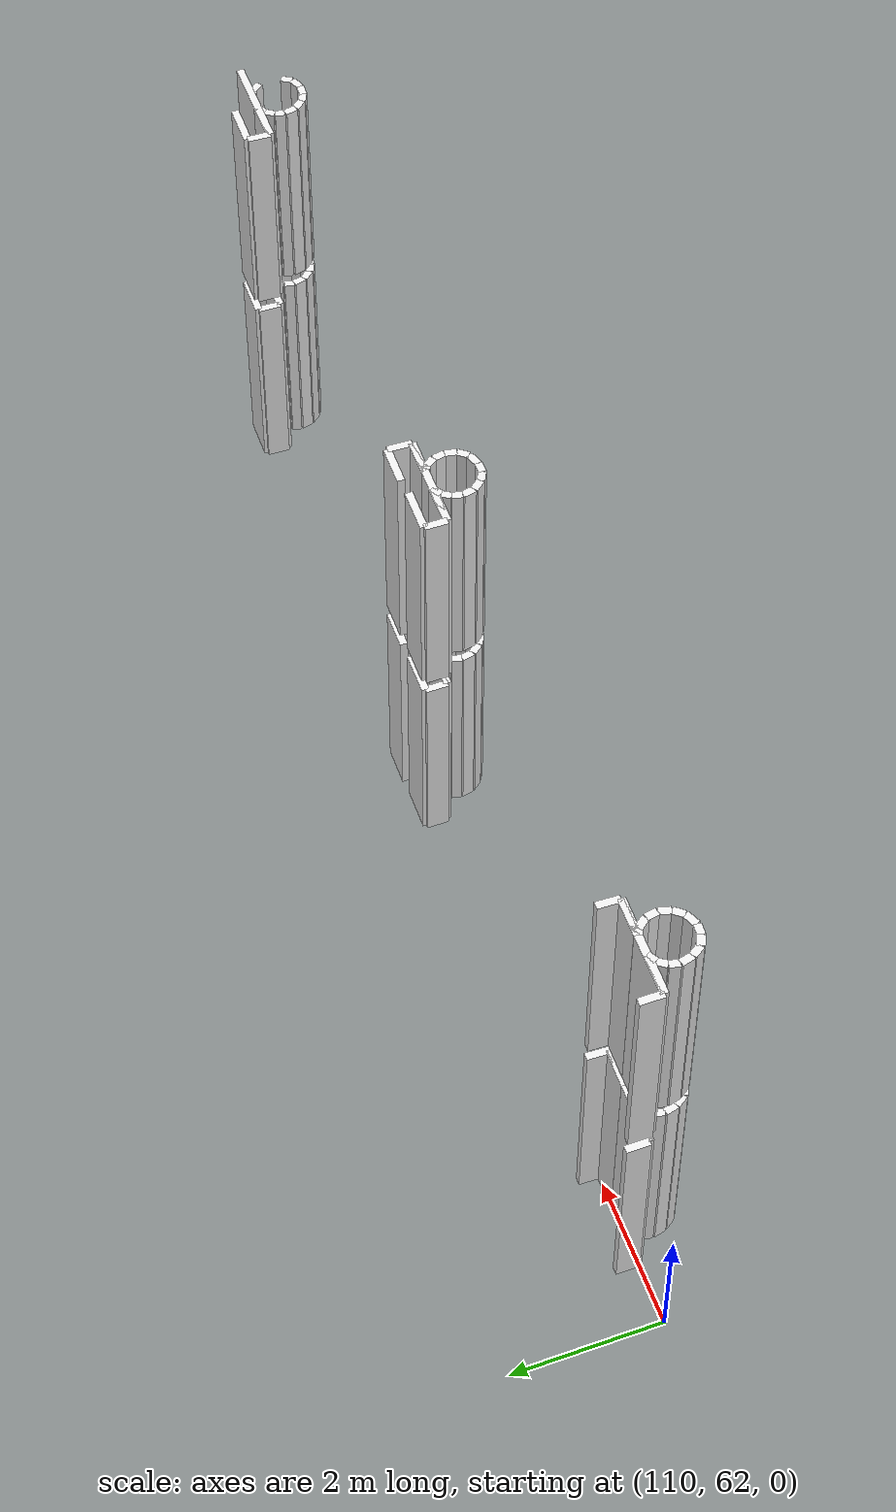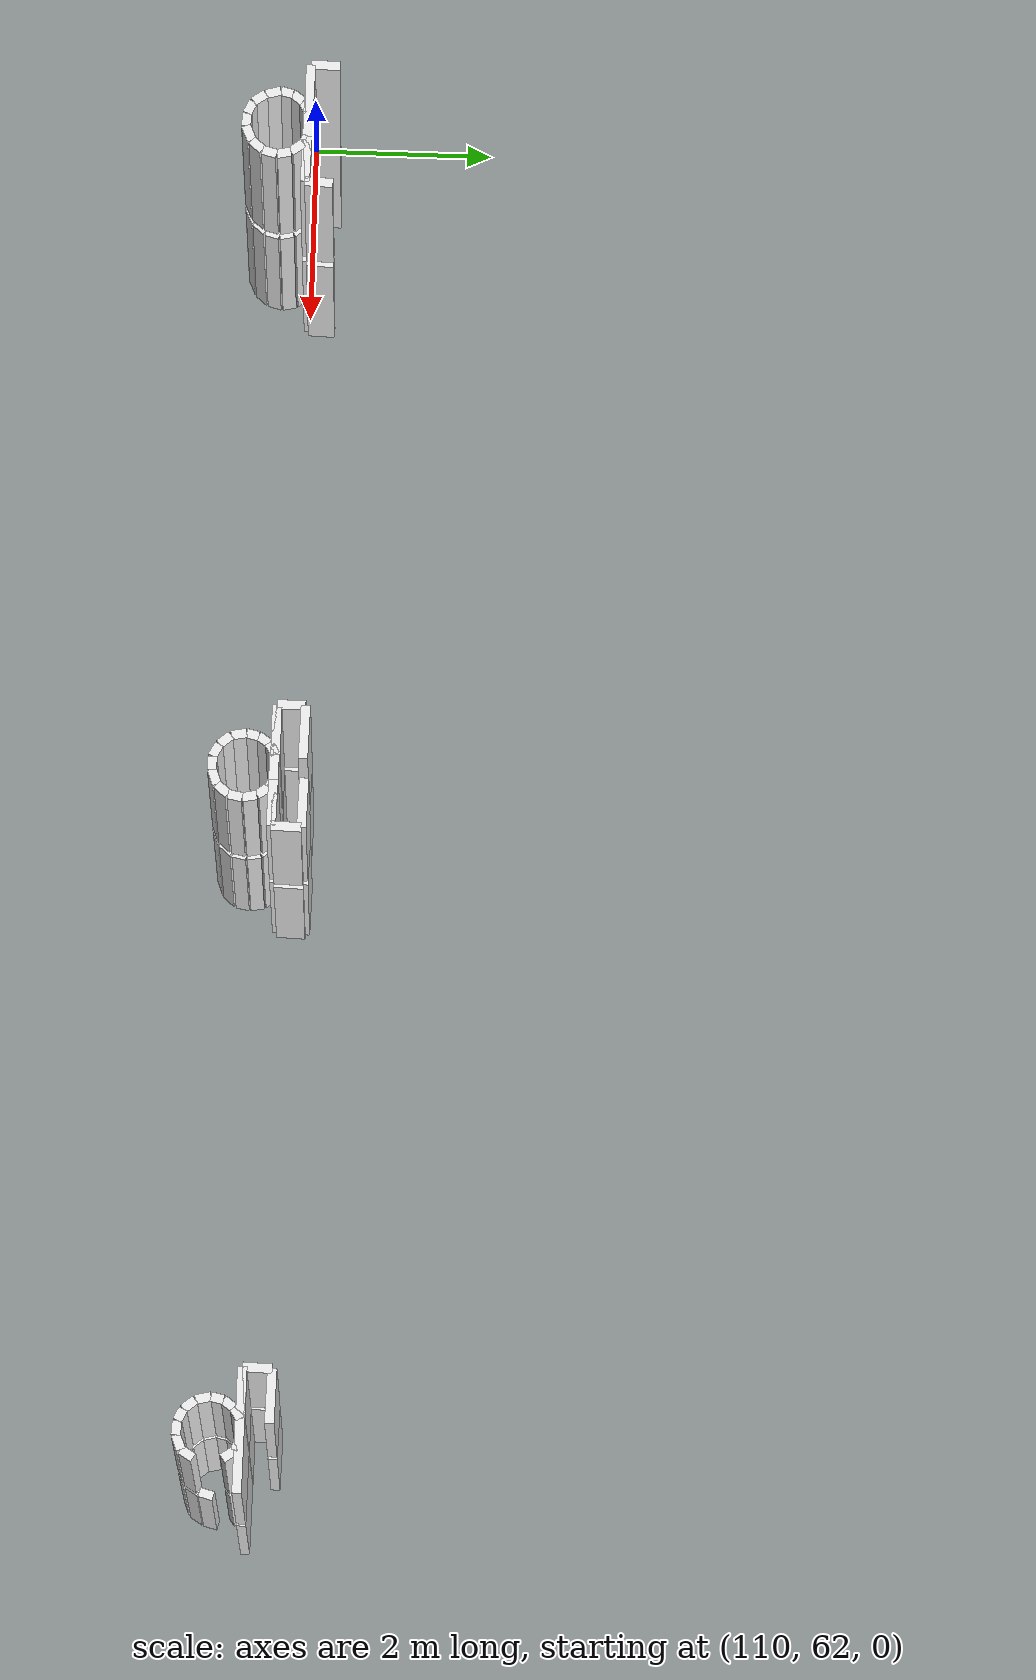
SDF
<sdf version="1.6">
 <world name="default">
  <model name="wall_118.1_62.2_0.0">
   <static>true</static>
   <pose>118.13499999998021 62.19500000006519 1.5 0 0 -0.01754206048187066</pose>
   <link name="link">
    <visual name="visual">
     <geometry><box><size>0.5700877125608004 0.1 3</size></box></geometry>
     <material>
      <script><uri>file://media/materials/scripts/gazebo.material</uri><name>Gazebo/White</name></script>
     </material>
    </visual>
   </link>
  </model>
  <model name="wall_118.9_62.2_0.0">
   <static>true</static>
   <pose>118.89499999998952 62.205000000074506 1.5 0 0 -0.018865685601167047</pose>
   <link name="link">
    <visual name="visual">
     <geometry><box><size>0.5300943311934637 0.1 3</size></box></geometry>
     <material>
      <script><uri>file://media/materials/scripts/gazebo.material</uri><name>Gazebo/White</name></script>
     </material>
    </visual>
   </link>
  </model>
  <model name="wall_125.2_62.1_0.0">
   <static>true</static>
   <pose>125.15499999999884 62.10499999998137 1.5 0 0 -0.017542059665172402</pose>
   <link name="link">
    <visual name="visual">
     <geometry><box><size>0.5700877125526321 0.1 3</size></box></geometry>
     <material>
      <script><uri>file://media/materials/scripts/gazebo.material</uri><name>Gazebo/White</name></script>
     </material>
    </visual>
   </link>
  </model>
  <model name="wall_110.8_62.2_0.0">
   <static>true</static>
   <pose>110.84999999997672 62.15500000002794 1.5 0 0 -1.5707963267948966</pose>
   <link name="link">
    <visual name="visual">
     <geometry><box><size>0.31000000005587935 0.1 3</size></box></geometry>
     <material>
      <script><uri>file://media/materials/scripts/gazebo.material</uri><name>Gazebo/White</name></script>
     </material>
    </visual>
   </link>
  </model>
  <model name="wall_111.1_62.0_0.0">
   <static>true</static>
   <pose>111.10999999998603 61.99500000011176 1.5 0 0 -0.01922839866933633</pose>
   <link name="link">
    <visual name="visual">
     <geometry><box><size>0.5200961449721592 0.1 3</size></box></geometry>
     <material>
      <script><uri>file://media/materials/scripts/gazebo.material</uri><name>Gazebo/White</name></script>
     </material>
    </visual>
   </link>
  </model>
  <model name="wall_111.3_62.0_0.0">
   <static>true</static>
   <pose>111.31500000000233 61.96000000019558 1.5 0 0 -2.642245931464764</pose>
   <link name="link">
    <visual name="visual">
     <geometry><box><size>0.12529964087591056 0.1 3</size></box></geometry>
     <material>
      <script><uri>file://media/materials/scripts/gazebo.material</uri><name>Gazebo/White</name></script>
     </material>
    </visual>
   </link>
  </model>
  <model name="wall_111.2_61.9_0.0">
   <static>true</static>
   <pose>111.22000000000116 61.875 1.5 0 0 -2.199592611857395</pose>
   <link name="link">
    <visual name="visual">
     <geometry><box><size>0.13601470536809043 0.1 3</size></box></geometry>
     <material>
      <script><uri>file://media/materials/scripts/gazebo.material</uri><name>Gazebo/White</name></script>
     </material>
    </visual>
   </link>
  </model>
  <model name="wall_111.2_61.8_0.0">
   <static>true</static>
   <pose>111.16500000000815 61.75499999988824 1.5 0 0 -1.7975951748160817</pose>
   <link name="link">
    <visual name="visual">
     <geometry><box><size>0.13341664052556057 0.1 3</size></box></geometry>
     <material>
      <script><uri>file://media/materials/scripts/gazebo.material</uri><name>Gazebo/White</name></script>
     </material>
    </visual>
   </link>
  </model>
  <model name="wall_111.2_61.6_0.0">
   <static>true</static>
   <pose>111.1700000000128 61.609999999869615 1.5 0 0 -1.3258176640104304</pose>
   <link name="link">
    <visual name="visual">
     <geometry><box><size>0.16492422516418664 0.1 3</size></box></geometry>
     <material>
      <script><uri>file://media/materials/scripts/gazebo.material</uri><name>Gazebo/White</name></script>
     </material>
    </visual>
   </link>
  </model>
  <model name="wall_111.2_61.5_0.0">
   <static>true</static>
   <pose>111.23500000001513 61.46499999985099 1.5 0 0 -0.9652516626544161</pose>
   <link name="link">
    <visual name="visual">
     <geometry><box><size>0.15811388293111006 0.1 3</size></box></geometry>
     <material>
      <script><uri>file://media/materials/scripts/gazebo.material</uri><name>Gazebo/White</name></script>
     </material>
    </visual>
   </link>
  </model>
  <model name="wall_111.3_61.4_0.0">
   <static>true</static>
   <pose>111.34500000000116 61.36999999987893 1.5 0 0 -0.4324077760816295</pose>
   <link name="link">
    <visual name="visual">
     <geometry><box><size>0.14317821060755806 0.1 3</size></box></geometry>
     <material>
      <script><uri>file://media/materials/scripts/gazebo.material</uri><name>Gazebo/White</name></script>
     </material>
    </visual>
   </link>
  </model>
  <model name="wall_111.5_61.3_0.0">
   <static>true</static>
   <pose>111.47999999998137 61.33499999996275 1.5 0 0 -0.07130746318975038</pose>
   <link name="link">
    <visual name="visual">
     <geometry><box><size>0.1403566884741914 0.1 3</size></box></geometry>
     <material>
      <script><uri>file://media/materials/scripts/gazebo.material</uri><name>Gazebo/White</name></script>
     </material>
    </visual>
   </link>
  </model>
  <model name="wall_111.6_61.4_0.0">
   <static>true</static>
   <pose>111.63000000000466 61.36499999999069 1.5 0 0 0.41241044064316335</pose>
   <link name="link">
    <visual name="visual">
     <geometry><box><size>0.17464249192840064 0.1 3</size></box></geometry>
     <material>
      <script><uri>file://media/materials/scripts/gazebo.material</uri><name>Gazebo/White</name></script>
     </material>
    </visual>
   </link>
  </model>
  <model name="wall_111.8_61.5_0.0">
   <static>true</static>
   <pose>111.76000000000931 61.45999999996275 1.5 0 0 0.8760580511707278</pose>
   <link name="link">
    <visual name="visual">
     <geometry><box><size>0.15620499358908305 0.1 3</size></box></geometry>
     <material>
      <script><uri>file://media/materials/scripts/gazebo.material</uri><name>Gazebo/White</name></script>
     </material>
    </visual>
   </link>
  </model>
  <model name="wall_111.8_61.6_0.0">
   <static>true</static>
   <pose>111.8299999999872 61.59499999997206 1.5 0 0 1.310193935023403</pose>
   <link name="link">
    <visual name="visual">
     <geometry><box><size>0.15524174686721334 0.1 3</size></box></geometry>
     <material>
      <script><uri>file://media/materials/scripts/gazebo.material</uri><name>Gazebo/White</name></script>
     </material>
    </visual>
   </link>
  </model>
  <model name="wall_111.8_61.7_0.0">
   <static>true</static>
   <pose>111.83499999999185 61.74499999987893 1.5 0 0 1.7681918865701522</pose>
   <link name="link">
    <visual name="visual">
     <geometry><box><size>0.15297058531052382 0.1 3</size></box></geometry>
     <material>
      <script><uri>file://media/materials/scripts/gazebo.material</uri><name>Gazebo/White</name></script>
     </material>
    </visual>
   </link>
  </model>
  <model name="wall_111.8_61.9_0.0">
   <static>true</static>
   <pose>111.76999999998952 61.88500000000931 1.5 0 0 2.2264919518895905</pose>
   <link name="link">
    <visual name="visual">
     <geometry><box><size>0.16401219497037284 0.1 3</size></box></geometry>
     <material>
      <script><uri>file://media/materials/scripts/gazebo.material</uri><name>Gazebo/White</name></script>
     </material>
    </visual>
   </link>
  </model>
  <model name="wall_111.7_62.0_0.0">
   <static>true</static>
   <pose>111.67999999999302 61.97000000020489 1.5 0 0 2.6779450440069104</pose>
   <link name="link">
    <visual name="visual">
     <geometry><box><size>0.08944271907916658 0.1 3</size></box></geometry>
     <material>
      <script><uri>file://media/materials/scripts/gazebo.material</uri><name>Gazebo/White</name></script>
     </material>
    </visual>
   </link>
  </model>
  <model name="wall_111.9_62.0_0.0">
   <static>true</static>
   <pose>111.89000000001397 61.985000000102445 1.5 0 0 -0.019997334457244633</pose>
   <link name="link">
    <visual name="visual">
     <geometry><box><size>0.5000999900068415 0.1 3</size></box></geometry>
     <material>
      <script><uri>file://media/materials/scripts/gazebo.material</uri><name>Gazebo/White</name></script>
     </material>
    </visual>
   </link>
  </model>
  <model name="wall_112.1_62.1_0.0">
   <static>true</static>
   <pose>112.14500000001863 62.12999999988824 1.5 0 0 1.5374753308649667</pose>
   <link name="link">
    <visual name="visual">
     <geometry><box><size>0.30016662021022184 0.1 3</size></box></geometry>
     <material>
      <script><uri>file://media/materials/scripts/gazebo.material</uri><name>Gazebo/White</name></script>
     </material>
    </visual>
   </link>
  </model>
  <model name="wall_117.8_62.1_0.0">
   <static>true</static>
   <pose>117.84999999997672 62.050000000046566 1.5 0 0 -1.5707963267948966</pose>
   <link name="link">
    <visual name="visual">
     <geometry><box><size>0.3000000002793968 0.1 3</size></box></geometry>
     <material>
      <script><uri>file://media/materials/scripts/gazebo.material</uri><name>Gazebo/White</name></script>
     </material>
    </visual>
   </link>
  </model>
  <model name="wall_118.1_61.9_0.0">
   <static>true</static>
   <pose>118.11999999999534 61.89999999990687 1.5 0 0 0.0</pose>
   <link name="link">
    <visual name="visual">
     <geometry><box><size>0.5400000000372529 0.1 3</size></box></geometry>
     <material>
      <script><uri>file://media/materials/scripts/gazebo.material</uri><name>Gazebo/White</name></script>
     </material>
    </visual>
   </link>
  </model>
  <model name="wall_118.3_61.9_0.0">
   <static>true</static>
   <pose>118.3300000000163 61.86499999999069 1.5 0 0 -2.6135182061888536</pose>
   <link name="link">
    <visual name="visual">
     <geometry><box><size>0.1389244398060078 0.1 3</size></box></geometry>
     <material>
      <script><uri>file://media/materials/scripts/gazebo.material</uri><name>Gazebo/White</name></script>
     </material>
    </visual>
   </link>
  </model>
  <model name="wall_118.2_61.8_0.0">
   <static>true</static>
   <pose>118.23500000001513 61.7750000001397 1.5 0 0 -2.1375255449004795</pose>
   <link name="link">
    <visual name="visual">
     <geometry><box><size>0.13038404799780207 0.1 3</size></box></geometry>
     <material>
      <script><uri>file://media/materials/scripts/gazebo.material</uri><name>Gazebo/White</name></script>
     </material>
    </visual>
   </link>
  </model>
  <model name="wall_118.2_61.7_0.0">
   <static>true</static>
   <pose>118.18499999999767 61.65500000002794 1.5 0 0 -1.7975951744563714</pose>
   <link name="link">
    <visual name="visual">
     <geometry><box><size>0.1334166409923854 0.1 3</size></box></geometry>
     <material>
      <script><uri>file://media/materials/scripts/gazebo.material</uri><name>Gazebo/White</name></script>
     </material>
    </visual>
   </link>
  </model>
  <model name="wall_118.2_61.5_0.0">
   <static>true</static>
   <pose>118.18499999999767 61.51000000000931 1.5 0 0 -1.3854483762720382</pose>
   <link name="link">
    <visual name="visual">
     <geometry><box><size>0.16278820565491986 0.1 3</size></box></geometry>
     <material>
      <script><uri>file://media/materials/scripts/gazebo.material</uri><name>Gazebo/White</name></script>
     </material>
    </visual>
   </link>
  </model>
  <model name="wall_118.2_61.4_0.0">
   <static>true</static>
   <pose>118.25 61.37000000011176 1.5 0 0 -0.8760580511707278</pose>
   <link name="link">
    <visual name="visual">
     <geometry><box><size>0.15620499358908305 0.1 3</size></box></geometry>
     <material>
      <script><uri>file://media/materials/scripts/gazebo.material</uri><name>Gazebo/White</name></script>
     </material>
    </visual>
   </link>
  </model>
  <model name="wall_118.4_61.3_0.0">
   <static>true</static>
   <pose>118.36499999999069 61.2750000001397 1.5 0 0 -0.49394136790495224</pose>
   <link name="link">
    <visual name="visual">
     <geometry><box><size>0.14764823052695686 0.1 3</size></box></geometry>
     <material>
      <script><uri>file://media/materials/scripts/gazebo.material</uri><name>Gazebo/White</name></script>
     </material>
    </visual>
   </link>
  </model>
  <model name="wall_118.5_61.2_0.0">
   <static>true</static>
   <pose>118.5 61.24000000022352 1.5 0 0 0.0</pose>
   <link name="link">
    <visual name="visual">
     <geometry><box><size>0.14000000001396984 0.1 3</size></box></geometry>
     <material>
      <script><uri>file://media/materials/scripts/gazebo.material</uri><name>Gazebo/White</name></script>
     </material>
    </visual>
   </link>
  </model>
  <model name="wall_118.6_61.3_0.0">
   <static>true</static>
   <pose>118.64999999999418 61.27000000001863 1.5 0 0 0.3587706680778179</pose>
   <link name="link">
    <visual name="visual">
     <geometry><box><size>0.1708800747384859 0.1 3</size></box></geometry>
     <material>
      <script><uri>file://media/materials/scripts/gazebo.material</uri><name>Gazebo/White</name></script>
     </material>
    </visual>
   </link>
  </model>
  <model name="wall_118.8_61.4_0.0">
   <static>true</static>
   <pose>118.77999999999884 61.359999999869615 1.5 0 0 0.8760580508844606</pose>
   <link name="link">
    <visual name="visual">
     <geometry><box><size>0.15620499362634668 0.1 3</size></box></geometry>
     <material>
      <script><uri>file://media/materials/scripts/gazebo.material</uri><name>Gazebo/White</name></script>
     </material>
    </visual>
   </link>
  </model>
  <model name="wall_118.8_61.5_0.0">
   <static>true</static>
   <pose>118.84500000000116 61.49499999987893 1.5 0 0 1.373400767019641</pose>
   <link name="link">
    <visual name="visual">
     <geometry><box><size>0.15297058531052382 0.1 3</size></box></geometry>
     <material>
      <script><uri>file://media/materials/scripts/gazebo.material</uri><name>Gazebo/White</name></script>
     </material>
    </visual>
   </link>
  </model>
  <model name="wall_118.8_61.6_0.0">
   <static>true</static>
   <pose>118.84500000000116 61.64500000001863 1.5 0 0 1.7681918859731505</pose>
   <link name="link">
    <visual name="visual">
     <geometry><box><size>0.15297058576714226 0.1 3</size></box></geometry>
     <material>
      <script><uri>file://media/materials/scripts/gazebo.material</uri><name>Gazebo/White</name></script>
     </material>
    </visual>
   </link>
  </model>
  <model name="wall_118.8_61.8_0.0">
   <static>true</static>
   <pose>118.78500000000349 61.78500000014901 1.5 0 0 2.176340990935377</pose>
   <link name="link">
    <visual name="visual">
     <geometry><box><size>0.15811388293111006 0.1 3</size></box></geometry>
     <material>
      <script><uri>file://media/materials/scripts/gazebo.material</uri><name>Gazebo/White</name></script>
     </material>
    </visual>
   </link>
  </model>
  <model name="wall_118.7_61.9_0.0">
   <static>true</static>
   <pose>118.69999999998254 61.87000000011176 1.5 0 0 2.6779450442979487</pose>
   <link name="link">
    <visual name="visual">
     <geometry><box><size>0.0894427191312291 0.1 3</size></box></geometry>
     <material>
      <script><uri>file://media/materials/scripts/gazebo.material</uri><name>Gazebo/White</name></script>
     </material>
    </visual>
   </link>
  </model>
  <model name="wall_118.9_61.9_0.0">
   <static>true</static>
   <pose>118.90499999999884 61.88500000000931 1.5 0 0 -0.020405331178467944</pose>
   <link name="link">
    <visual name="visual">
     <geometry><box><size>0.4901020302475388 0.1 3</size></box></geometry>
     <material>
      <script><uri>file://media/materials/scripts/gazebo.material</uri><name>Gazebo/White</name></script>
     </material>
    </visual>
   </link>
  </model>
  <model name="wall_119.2_62.0_0.0">
   <static>true</static>
   <pose>119.15499999999884 62.04000000003725 1.5 0 0 1.5395564935463497</pose>
   <link name="link">
    <visual name="visual">
     <geometry><box><size>0.320156212167993 0.1 3</size></box></geometry>
     <material>
      <script><uri>file://media/materials/scripts/gazebo.material</uri><name>Gazebo/White</name></script>
     </material>
    </visual>
   </link>
  </model>
  <model name="wall_124.9_62.0_0.0">
   <static>true</static>
   <pose>124.86499999999069 61.954999999841675 1.5 0 0 -1.6030432092543534</pose>
   <link name="link">
    <visual name="visual">
     <geometry><box><size>0.310161248441567 0.1 3</size></box></geometry>
     <material>
      <script><uri>file://media/materials/scripts/gazebo.material</uri><name>Gazebo/White</name></script>
     </material>
    </visual>
   </link>
  </model>
  <model name="wall_125.1_61.8_0.0">
   <static>true</static>
   <pose>125.13000000000466 61.799999999813735 1.5 0 0 0.0</pose>
   <link name="link">
    <visual name="visual">
     <geometry><box><size>0.5400000000372529 0.1 3</size></box></geometry>
     <material>
      <script><uri>file://media/materials/scripts/gazebo.material</uri><name>Gazebo/White</name></script>
     </material>
    </visual>
   </link>
  </model>
  <model name="wall_125.3_61.8_0.0">
   <static>true</static>
   <pose>125.34500000000116 61.764999999897555 1.5 0 0 -2.5748634373331596</pose>
   <link name="link">
    <visual name="visual">
     <geometry><box><size>0.13038404805137394 0.1 3</size></box></geometry>
     <material>
      <script><uri>file://media/materials/scripts/gazebo.material</uri><name>Gazebo/White</name></script>
     </material>
    </visual>
   </link>
  </model>
  <model name="wall_125.2_61.7_0.0">
   <static>true</static>
   <pose>125.25 61.675000000046566 1.5 0 0 -2.1995926135249655</pose>
   <link name="link">
    <visual name="visual">
     <geometry><box><size>0.13601470495725726 0.1 3</size></box></geometry>
     <material>
      <script><uri>file://media/materials/scripts/gazebo.material</uri><name>Gazebo/White</name></script>
     </material>
    </visual>
   </link>
  </model>
  <model name="wall_125.2_61.6_0.0">
   <static>true</static>
   <pose>125.19500000000698 61.55500000016764 1.5 0 0 -1.7975951752411936</pose>
   <link name="link">
    <visual name="visual">
     <geometry><box><size>0.13341664053864913 0.1 3</size></box></geometry>
     <material>
      <script><uri>file://media/materials/scripts/gazebo.material</uri><name>Gazebo/White</name></script>
     </material>
    </visual>
   </link>
  </model>
  <model name="wall_125.2_61.4_0.0">
   <static>true</static>
   <pose>125.19999999998254 61.41000000014901 1.5 0 0 -1.3258176640104304</pose>
   <link name="link">
    <visual name="visual">
     <geometry><box><size>0.16492422516418664 0.1 3</size></box></geometry>
     <material>
      <script><uri>file://media/materials/scripts/gazebo.material</uri><name>Gazebo/White</name></script>
     </material>
    </visual>
   </link>
  </model>
  <model name="wall_125.3_61.3_0.0">
   <static>true</static>
   <pose>125.26999999998952 61.27000000001863 1.5 0 0 -0.8760580508844606</pose>
   <link name="link">
    <visual name="visual">
     <geometry><box><size>0.15620499362634668 0.1 3</size></box></geometry>
     <material>
      <script><uri>file://media/materials/scripts/gazebo.material</uri><name>Gazebo/White</name></script>
     </material>
    </visual>
   </link>
  </model>
  <model name="wall_125.4_61.2_0.0">
   <static>true</static>
   <pose>125.38000000000466 61.17999999993481 1.5 0 0 -0.4636476093888572</pose>
   <link name="link">
    <visual name="visual">
     <geometry><box><size>0.1341640786708124 0.1 3</size></box></geometry>
     <material>
      <script><uri>file://media/materials/scripts/gazebo.material</uri><name>Gazebo/White</name></script>
     </material>
    </visual>
   </link>
  </model>
  <model name="wall_125.5_61.1_0.0">
   <static>true</static>
   <pose>125.51500000001397 61.14500000001863 1.5 0 0 -0.06656816228199888</pose>
   <link name="link">
    <visual name="visual">
     <geometry><box><size>0.15033296379209243 0.1 3</size></box></geometry>
     <material>
      <script><uri>file://media/materials/scripts/gazebo.material</uri><name>Gazebo/White</name></script>
     </material>
    </visual>
   </link>
  </model>
  <model name="wall_125.7_61.2_0.0">
   <static>true</static>
   <pose>125.66500000000815 61.170000000158325 1.5 0 0 0.380506377513797</pose>
   <link name="link">
    <visual name="visual">
     <geometry><box><size>0.16155494420236152 0.1 3</size></box></geometry>
     <material>
      <script><uri>file://media/materials/scripts/gazebo.material</uri><name>Gazebo/White</name></script>
     </material>
    </visual>
   </link>
  </model>
  <model name="wall_125.8_61.3_0.0">
   <static>true</static>
   <pose>125.77999999999884 61.265000000130385 1.5 0 0 1.019141343791695</pose>
   <link name="link">
    <visual name="visual">
     <geometry><box><size>0.15264337513809906 0.1 3</size></box></geometry>
     <material>
      <script><uri>file://media/materials/scripts/gazebo.material</uri><name>Gazebo/White</name></script>
     </material>
    </visual>
   </link>
  </model>
  <model name="wall_125.8_61.4_0.0">
   <static>true</static>
   <pose>125.83999999999651 61.40500000002794 1.5 0 0 1.310193935023403</pose>
   <link name="link">
    <visual name="visual">
     <geometry><box><size>0.15524174686721334 0.1 3</size></box></geometry>
     <material>
      <script><uri>file://media/materials/scripts/gazebo.material</uri><name>Gazebo/White</name></script>
     </material>
    </visual>
   </link>
  </model>
  <model name="wall_125.8_61.7_0.0">
   <static>true</static>
   <pose>125.77499999999418 61.69499999983236 1.5 0 0 2.176340990935377</pose>
   <link name="link">
    <visual name="visual">
     <geometry><box><size>0.15811388293111006 0.1 3</size></box></geometry>
     <material>
      <script><uri>file://media/materials/scripts/gazebo.material</uri><name>Gazebo/White</name></script>
     </material>
    </visual>
   </link>
  </model>
  <model name="wall_125.7_61.8_0.0">
   <static>true</static>
   <pose>125.69000000000233 61.77499999990687 1.5 0 0 2.782821980289233</pose>
   <link name="link">
    <visual name="visual">
     <geometry><box><size>0.08544003750549678 0.1 3</size></box></geometry>
     <material>
      <script><uri>file://media/materials/scripts/gazebo.material</uri><name>Gazebo/White</name></script>
     </material>
    </visual>
   </link>
  </model>
  <model name="wall_111.5_62.0_0.0">
   <static>true</static>
   <pose>111.49499999999534 61.98999999999069 1.5 0 0 -0.015502633939004449</pose>
   <link name="link">
    <visual name="visual">
     <geometry><box><size>1.2901550294816735 0.1 3</size></box></geometry>
     <material>
      <script><uri>file://media/materials/scripts/gazebo.material</uri><name>Gazebo/White</name></script>
     </material>
    </visual>
   </link>
  </model>
  <model name="wall_118.5_61.9_0.0">
   <static>true</static>
   <pose>118.5 61.889999999897555 1.5 0 0 -0.015383401794368852</pose>
   <link name="link">
    <visual name="visual">
     <geometry><box><size>1.3001538370984478 0.1 3</size></box></geometry>
     <material>
      <script><uri>file://media/materials/scripts/gazebo.material</uri><name>Gazebo/White</name></script>
     </material>
    </visual>
   </link>
  </model>
  <model name="wall_125.5_61.8_0.0">
   <static>true</static>
   <pose>125.51499999998487 61.794999999925494 1.5 0 0 -0.007633439346892596</pose>
   <link name="link">
    <visual name="visual">
     <geometry><box><size>1.3100381673788857 0.1 3</size></box></geometry>
     <material>
      <script><uri>file://media/materials/scripts/gazebo.material</uri><name>Gazebo/White</name></script>
     </material>
    </visual>
   </link>
  </model>
  <model name="wall_118.1_62.2_3.2">
   <static>true</static>
   <pose>118.13499999998021 62.19500000006519 4.7 0 0 -0.01754206048187066</pose>
   <link name="link">
    <visual name="visual">
     <geometry><box><size>0.5700877125608004 0.1 3</size></box></geometry>
     <material>
      <script><uri>file://media/materials/scripts/gazebo.material</uri><name>Gazebo/White</name></script>
     </material>
    </visual>
   </link>
  </model>
  <model name="wall_118.9_62.2_3.2">
   <static>true</static>
   <pose>118.89499999998952 62.205000000074506 4.7 0 0 -0.018865685601167047</pose>
   <link name="link">
    <visual name="visual">
     <geometry><box><size>0.5300943311934637 0.1 3</size></box></geometry>
     <material>
      <script><uri>file://media/materials/scripts/gazebo.material</uri><name>Gazebo/White</name></script>
     </material>
    </visual>
   </link>
  </model>
  <model name="wall_125.2_62.1_3.2">
   <static>true</static>
   <pose>125.15499999999884 62.10499999998137 4.7 0 0 -0.017542059665172402</pose>
   <link name="link">
    <visual name="visual">
     <geometry><box><size>0.5700877125526321 0.1 3</size></box></geometry>
     <material>
      <script><uri>file://media/materials/scripts/gazebo.material</uri><name>Gazebo/White</name></script>
     </material>
    </visual>
   </link>
  </model>
  <model name="wall_110.8_62.2_3.2">
   <static>true</static>
   <pose>110.84999999997672 62.15500000002794 4.7 0 0 -1.5707963267948966</pose>
   <link name="link">
    <visual name="visual">
     <geometry><box><size>0.31000000005587935 0.1 3</size></box></geometry>
     <material>
      <script><uri>file://media/materials/scripts/gazebo.material</uri><name>Gazebo/White</name></script>
     </material>
    </visual>
   </link>
  </model>
  <model name="wall_111.1_62.0_3.2">
   <static>true</static>
   <pose>111.10999999998603 61.99500000011176 4.7 0 0 -0.01922839866933633</pose>
   <link name="link">
    <visual name="visual">
     <geometry><box><size>0.5200961449721592 0.1 3</size></box></geometry>
     <material>
      <script><uri>file://media/materials/scripts/gazebo.material</uri><name>Gazebo/White</name></script>
     </material>
    </visual>
   </link>
  </model>
  <model name="wall_111.3_62.0_3.2">
   <static>true</static>
   <pose>111.31500000000233 61.96000000019558 4.7 0 0 -2.642245931464764</pose>
   <link name="link">
    <visual name="visual">
     <geometry><box><size>0.12529964087591056 0.1 3</size></box></geometry>
     <material>
      <script><uri>file://media/materials/scripts/gazebo.material</uri><name>Gazebo/White</name></script>
     </material>
    </visual>
   </link>
  </model>
  <model name="wall_111.2_61.9_3.2">
   <static>true</static>
   <pose>111.22000000000116 61.875 4.7 0 0 -2.199592611857395</pose>
   <link name="link">
    <visual name="visual">
     <geometry><box><size>0.13601470536809043 0.1 3</size></box></geometry>
     <material>
      <script><uri>file://media/materials/scripts/gazebo.material</uri><name>Gazebo/White</name></script>
     </material>
    </visual>
   </link>
  </model>
  <model name="wall_111.2_61.8_3.2">
   <static>true</static>
   <pose>111.16500000000815 61.75499999988824 4.7 0 0 -1.7975951748160817</pose>
   <link name="link">
    <visual name="visual">
     <geometry><box><size>0.13341664052556057 0.1 3</size></box></geometry>
     <material>
      <script><uri>file://media/materials/scripts/gazebo.material</uri><name>Gazebo/White</name></script>
     </material>
    </visual>
   </link>
  </model>
  <model name="wall_111.2_61.6_3.2">
   <static>true</static>
   <pose>111.1700000000128 61.609999999869615 4.7 0 0 -1.3258176640104304</pose>
   <link name="link">
    <visual name="visual">
     <geometry><box><size>0.16492422516418664 0.1 3</size></box></geometry>
     <material>
      <script><uri>file://media/materials/scripts/gazebo.material</uri><name>Gazebo/White</name></script>
     </material>
    </visual>
   </link>
  </model>
  <model name="wall_111.2_61.5_3.2">
   <static>true</static>
   <pose>111.23500000001513 61.46499999985099 4.7 0 0 -0.9652516626544161</pose>
   <link name="link">
    <visual name="visual">
     <geometry><box><size>0.15811388293111006 0.1 3</size></box></geometry>
     <material>
      <script><uri>file://media/materials/scripts/gazebo.material</uri><name>Gazebo/White</name></script>
     </material>
    </visual>
   </link>
  </model>
  <model name="wall_111.3_61.4_3.2">
   <static>true</static>
   <pose>111.34500000000116 61.36999999987893 4.7 0 0 -0.4324077760816295</pose>
   <link name="link">
    <visual name="visual">
     <geometry><box><size>0.14317821060755806 0.1 3</size></box></geometry>
     <material>
      <script><uri>file://media/materials/scripts/gazebo.material</uri><name>Gazebo/White</name></script>
     </material>
    </visual>
   </link>
  </model>
  <model name="wall_111.5_61.3_3.2">
   <static>true</static>
   <pose>111.47999999998137 61.33499999996275 4.7 0 0 -0.07130746318975038</pose>
   <link name="link">
    <visual name="visual">
     <geometry><box><size>0.1403566884741914 0.1 3</size></box></geometry>
     <material>
      <script><uri>file://media/materials/scripts/gazebo.material</uri><name>Gazebo/White</name></script>
     </material>
    </visual>
   </link>
  </model>
  <model name="wall_111.6_61.4_3.2">
   <static>true</static>
   <pose>111.63000000000466 61.36499999999069 4.7 0 0 0.41241044064316335</pose>
   <link name="link">
    <visual name="visual">
     <geometry><box><size>0.17464249192840064 0.1 3</size></box></geometry>
     <material>
      <script><uri>file://media/materials/scripts/gazebo.material</uri><name>Gazebo/White</name></script>
     </material>
    </visual>
   </link>
  </model>
  <model name="wall_111.8_61.5_3.2">
   <static>true</static>
   <pose>111.76000000000931 61.45999999996275 4.7 0 0 0.8760580511707278</pose>
   <link name="link">
    <visual name="visual">
     <geometry><box><size>0.15620499358908305 0.1 3</size></box></geometry>
     <material>
      <script><uri>file://media/materials/scripts/gazebo.material</uri><name>Gazebo/White</name></script>
     </material>
    </visual>
   </link>
  </model>
  <model name="wall_111.8_61.6_3.2">
   <static>true</static>
   <pose>111.8299999999872 61.59499999997206 4.7 0 0 1.310193935023403</pose>
   <link name="link">
    <visual name="visual">
     <geometry><box><size>0.15524174686721334 0.1 3</size></box></geometry>
     <material>
      <script><uri>file://media/materials/scripts/gazebo.material</uri><name>Gazebo/White</name></script>
     </material>
    </visual>
   </link>
  </model>
  <model name="wall_111.8_61.7_3.2">
   <static>true</static>
   <pose>111.83499999999185 61.74499999987893 4.7 0 0 1.7681918865701522</pose>
   <link name="link">
    <visual name="visual">
     <geometry><box><size>0.15297058531052382 0.1 3</size></box></geometry>
     <material>
      <script><uri>file://media/materials/scripts/gazebo.material</uri><name>Gazebo/White</name></script>
     </material>
    </visual>
   </link>
  </model>
  <model name="wall_111.8_61.9_3.2">
   <static>true</static>
   <pose>111.76999999998952 61.88500000000931 4.7 0 0 2.2264919518895905</pose>
   <link name="link">
    <visual name="visual">
     <geometry><box><size>0.16401219497037284 0.1 3</size></box></geometry>
     <material>
      <script><uri>file://media/materials/scripts/gazebo.material</uri><name>Gazebo/White</name></script>
     </material>
    </visual>
   </link>
  </model>
  <model name="wall_111.7_62.0_3.2">
   <static>true</static>
   <pose>111.67999999999302 61.97000000020489 4.7 0 0 2.6779450440069104</pose>
   <link name="link">
    <visual name="visual">
     <geometry><box><size>0.08944271907916658 0.1 3</size></box></geometry>
     <material>
      <script><uri>file://media/materials/scripts/gazebo.material</uri><name>Gazebo/White</name></script>
     </material>
    </visual>
   </link>
  </model>
  <model name="wall_111.9_62.0_3.2">
   <static>true</static>
   <pose>111.89000000001397 61.985000000102445 4.7 0 0 -0.019997334457244633</pose>
   <link name="link">
    <visual name="visual">
     <geometry><box><size>0.5000999900068415 0.1 3</size></box></geometry>
     <material>
      <script><uri>file://media/materials/scripts/gazebo.material</uri><name>Gazebo/White</name></script>
     </material>
    </visual>
   </link>
  </model>
  <model name="wall_112.1_62.1_3.2">
   <static>true</static>
   <pose>112.14500000001863 62.12999999988824 4.7 0 0 1.5374753308649667</pose>
   <link name="link">
    <visual name="visual">
     <geometry><box><size>0.30016662021022184 0.1 3</size></box></geometry>
     <material>
      <script><uri>file://media/materials/scripts/gazebo.material</uri><name>Gazebo/White</name></script>
     </material>
    </visual>
   </link>
  </model>
  <model name="wall_117.8_62.1_3.2">
   <static>true</static>
   <pose>117.84999999997672 62.050000000046566 4.7 0 0 -1.5707963267948966</pose>
   <link name="link">
    <visual name="visual">
     <geometry><box><size>0.3000000002793968 0.1 3</size></box></geometry>
     <material>
      <script><uri>file://media/materials/scripts/gazebo.material</uri><name>Gazebo/White</name></script>
     </material>
    </visual>
   </link>
  </model>
  <model name="wall_118.1_61.9_3.2">
   <static>true</static>
   <pose>118.11999999999534 61.89999999990687 4.7 0 0 0.0</pose>
   <link name="link">
    <visual name="visual">
     <geometry><box><size>0.5400000000372529 0.1 3</size></box></geometry>
     <material>
      <script><uri>file://media/materials/scripts/gazebo.material</uri><name>Gazebo/White</name></script>
     </material>
    </visual>
   </link>
  </model>
  <model name="wall_118.3_61.9_3.2">
   <static>true</static>
   <pose>118.3300000000163 61.86499999999069 4.7 0 0 -2.6135182061888536</pose>
   <link name="link">
    <visual name="visual">
     <geometry><box><size>0.1389244398060078 0.1 3</size></box></geometry>
     <material>
      <script><uri>file://media/materials/scripts/gazebo.material</uri><name>Gazebo/White</name></script>
     </material>
    </visual>
   </link>
  </model>
  <model name="wall_118.2_61.8_3.2">
   <static>true</static>
   <pose>118.23500000001513 61.7750000001397 4.7 0 0 -2.1375255449004795</pose>
   <link name="link">
    <visual name="visual">
     <geometry><box><size>0.13038404799780207 0.1 3</size></box></geometry>
     <material>
      <script><uri>file://media/materials/scripts/gazebo.material</uri><name>Gazebo/White</name></script>
     </material>
    </visual>
   </link>
  </model>
  <model name="wall_118.2_61.7_3.2">
   <static>true</static>
   <pose>118.18499999999767 61.65500000002794 4.7 0 0 -1.7975951744563714</pose>
   <link name="link">
    <visual name="visual">
     <geometry><box><size>0.1334166409923854 0.1 3</size></box></geometry>
     <material>
      <script><uri>file://media/materials/scripts/gazebo.material</uri><name>Gazebo/White</name></script>
     </material>
    </visual>
   </link>
  </model>
  <model name="wall_118.2_61.5_3.2">
   <static>true</static>
   <pose>118.18499999999767 61.51000000000931 4.7 0 0 -1.3854483762720382</pose>
   <link name="link">
    <visual name="visual">
     <geometry><box><size>0.16278820565491986 0.1 3</size></box></geometry>
     <material>
      <script><uri>file://media/materials/scripts/gazebo.material</uri><name>Gazebo/White</name></script>
     </material>
    </visual>
   </link>
  </model>
  <model name="wall_118.2_61.4_3.2">
   <static>true</static>
   <pose>118.25 61.37000000011176 4.7 0 0 -0.8760580511707278</pose>
   <link name="link">
    <visual name="visual">
     <geometry><box><size>0.15620499358908305 0.1 3</size></box></geometry>
     <material>
      <script><uri>file://media/materials/scripts/gazebo.material</uri><name>Gazebo/White</name></script>
     </material>
    </visual>
   </link>
  </model>
  <model name="wall_118.4_61.3_3.2">
   <static>true</static>
   <pose>118.36499999999069 61.2750000001397 4.7 0 0 -0.49394136790495224</pose>
   <link name="link">
    <visual name="visual">
     <geometry><box><size>0.14764823052695686 0.1 3</size></box></geometry>
     <material>
      <script><uri>file://media/materials/scripts/gazebo.material</uri><name>Gazebo/White</name></script>
     </material>
    </visual>
   </link>
  </model>
  <model name="wall_118.5_61.2_3.2">
   <static>true</static>
   <pose>118.5 61.24000000022352 4.7 0 0 0.0</pose>
   <link name="link">
    <visual name="visual">
     <geometry><box><size>0.14000000001396984 0.1 3</size></box></geometry>
     <material>
      <script><uri>file://media/materials/scripts/gazebo.material</uri><name>Gazebo/White</name></script>
     </material>
    </visual>
   </link>
  </model>
  <model name="wall_118.6_61.3_3.2">
   <static>true</static>
   <pose>118.64999999999418 61.27000000001863 4.7 0 0 0.3587706680778179</pose>
   <link name="link">
    <visual name="visual">
     <geometry><box><size>0.1708800747384859 0.1 3</size></box></geometry>
     <material>
      <script><uri>file://media/materials/scripts/gazebo.material</uri><name>Gazebo/White</name></script>
     </material>
    </visual>
   </link>
  </model>
  <model name="wall_118.8_61.4_3.2">
   <static>true</static>
   <pose>118.77999999999884 61.359999999869615 4.7 0 0 0.8760580508844606</pose>
   <link name="link">
    <visual name="visual">
     <geometry><box><size>0.15620499362634668 0.1 3</size></box></geometry>
     <material>
      <script><uri>file://media/materials/scripts/gazebo.material</uri><name>Gazebo/White</name></script>
     </material>
    </visual>
   </link>
  </model>
  <model name="wall_118.8_61.5_3.2">
   <static>true</static>
   <pose>118.84500000000116 61.49499999987893 4.7 0 0 1.373400767019641</pose>
   <link name="link">
    <visual name="visual">
     <geometry><box><size>0.15297058531052382 0.1 3</size></box></geometry>
     <material>
      <script><uri>file://media/materials/scripts/gazebo.material</uri><name>Gazebo/White</name></script>
     </material>
    </visual>
   </link>
  </model>
  <model name="wall_118.8_61.6_3.2">
   <static>true</static>
   <pose>118.84500000000116 61.64500000001863 4.7 0 0 1.7681918859731505</pose>
   <link name="link">
    <visual name="visual">
     <geometry><box><size>0.15297058576714226 0.1 3</size></box></geometry>
     <material>
      <script><uri>file://media/materials/scripts/gazebo.material</uri><name>Gazebo/White</name></script>
     </material>
    </visual>
   </link>
  </model>
  <model name="wall_118.8_61.8_3.2">
   <static>true</static>
   <pose>118.78500000000349 61.78500000014901 4.7 0 0 2.176340990935377</pose>
   <link name="link">
    <visual name="visual">
     <geometry><box><size>0.15811388293111006 0.1 3</size></box></geometry>
     <material>
      <script><uri>file://media/materials/scripts/gazebo.material</uri><name>Gazebo/White</name></script>
     </material>
    </visual>
   </link>
  </model>
  <model name="wall_118.7_61.9_3.2">
   <static>true</static>
   <pose>118.69999999998254 61.87000000011176 4.7 0 0 2.6779450442979487</pose>
   <link name="link">
    <visual name="visual">
     <geometry><box><size>0.0894427191312291 0.1 3</size></box></geometry>
     <material>
      <script><uri>file://media/materials/scripts/gazebo.material</uri><name>Gazebo/White</name></script>
     </material>
    </visual>
   </link>
  </model>
  <model name="wall_118.9_61.9_3.2">
   <static>true</static>
   <pose>118.90499999999884 61.88500000000931 4.7 0 0 -0.020405331178467944</pose>
   <link name="link">
    <visual name="visual">
     <geometry><box><size>0.4901020302475388 0.1 3</size></box></geometry>
     <material>
      <script><uri>file://media/materials/scripts/gazebo.material</uri><name>Gazebo/White</name></script>
     </material>
    </visual>
   </link>
  </model>
  <model name="wall_119.2_62.0_3.2">
   <static>true</static>
   <pose>119.15499999999884 62.04000000003725 4.7 0 0 1.5395564935463497</pose>
   <link name="link">
    <visual name="visual">
     <geometry><box><size>0.320156212167993 0.1 3</size></box></geometry>
     <material>
      <script><uri>file://media/materials/scripts/gazebo.material</uri><name>Gazebo/White</name></script>
     </material>
    </visual>
   </link>
  </model>
  <model name="wall_124.9_62.0_3.2">
   <static>true</static>
   <pose>124.86499999999069 61.954999999841675 4.7 0 0 -1.6030432092543534</pose>
   <link name="link">
    <visual name="visual">
     <geometry><box><size>0.310161248441567 0.1 3</size></box></geometry>
     <material>
      <script><uri>file://media/materials/scripts/gazebo.material</uri><name>Gazebo/White</name></script>
     </material>
    </visual>
   </link>
  </model>
  <model name="wall_125.1_61.8_3.2">
   <static>true</static>
   <pose>125.13000000000466 61.799999999813735 4.7 0 0 0.0</pose>
   <link name="link">
    <visual name="visual">
     <geometry><box><size>0.5400000000372529 0.1 3</size></box></geometry>
     <material>
      <script><uri>file://media/materials/scripts/gazebo.material</uri><name>Gazebo/White</name></script>
     </material>
    </visual>
   </link>
  </model>
  <model name="wall_125.3_61.8_3.2">
   <static>true</static>
   <pose>125.34500000000116 61.764999999897555 4.7 0 0 -2.5748634373331596</pose>
   <link name="link">
    <visual name="visual">
     <geometry><box><size>0.13038404805137394 0.1 3</size></box></geometry>
     <material>
      <script><uri>file://media/materials/scripts/gazebo.material</uri><name>Gazebo/White</name></script>
     </material>
    </visual>
   </link>
  </model>
  <model name="wall_125.2_61.7_3.2">
   <static>true</static>
   <pose>125.25 61.675000000046566 4.7 0 0 -2.1995926135249655</pose>
   <link name="link">
    <visual name="visual">
     <geometry><box><size>0.13601470495725726 0.1 3</size></box></geometry>
     <material>
      <script><uri>file://media/materials/scripts/gazebo.material</uri><name>Gazebo/White</name></script>
     </material>
    </visual>
   </link>
  </model>
  <model name="wall_125.2_61.6_3.2">
   <static>true</static>
   <pose>125.19500000000698 61.55500000016764 4.7 0 0 -1.7975951752411936</pose>
   <link name="link">
    <visual name="visual">
     <geometry><box><size>0.13341664053864913 0.1 3</size></box></geometry>
     <material>
      <script><uri>file://media/materials/scripts/gazebo.material</uri><name>Gazebo/White</name></script>
     </material>
    </visual>
   </link>
  </model>
  <model name="wall_125.2_61.4_3.2">
   <static>true</static>
   <pose>125.19999999998254 61.41000000014901 4.7 0 0 -1.3258176640104304</pose>
   <link name="link">
    <visual name="visual">
     <geometry><box><size>0.16492422516418664 0.1 3</size></box></geometry>
     <material>
      <script><uri>file://media/materials/scripts/gazebo.material</uri><name>Gazebo/White</name></script>
     </material>
    </visual>
   </link>
  </model>
  <model name="wall_125.3_61.3_3.2">
   <static>true</static>
   <pose>125.26999999998952 61.27000000001863 4.7 0 0 -0.8760580508844606</pose>
   <link name="link">
    <visual name="visual">
     <geometry><box><size>0.15620499362634668 0.1 3</size></box></geometry>
     <material>
      <script><uri>file://media/materials/scripts/gazebo.material</uri><name>Gazebo/White</name></script>
     </material>
    </visual>
   </link>
  </model>
  <model name="wall_125.4_61.2_3.2">
   <static>true</static>
   <pose>125.38000000000466 61.17999999993481 4.7 0 0 -0.4636476093888572</pose>
   <link name="link">
    <visual name="visual">
     <geometry><box><size>0.1341640786708124 0.1 3</size></box></geometry>
     <material>
      <script><uri>file://media/materials/scripts/gazebo.material</uri><name>Gazebo/White</name></script>
     </material>
    </visual>
   </link>
  </model>
  <model name="wall_125.5_61.1_3.2">
   <static>true</static>
   <pose>125.51500000001397 61.14500000001863 4.7 0 0 -0.06656816228199888</pose>
   <link name="link">
    <visual name="visual">
     <geometry><box><size>0.15033296379209243 0.1 3</size></box></geometry>
     <material>
      <script><uri>file://media/materials/scripts/gazebo.material</uri><name>Gazebo/White</name></script>
     </material>
    </visual>
   </link>
  </model>
  <model name="wall_125.7_61.2_3.2">
   <static>true</static>
   <pose>125.66500000000815 61.170000000158325 4.7 0 0 0.380506377513797</pose>
   <link name="link">
    <visual name="visual">
     <geometry><box><size>0.16155494420236152 0.1 3</size></box></geometry>
     <material>
      <script><uri>file://media/materials/scripts/gazebo.material</uri><name>Gazebo/White</name></script>
     </material>
    </visual>
   </link>
  </model>
  <model name="wall_125.8_61.3_3.2">
   <static>true</static>
   <pose>125.77999999999884 61.265000000130385 4.7 0 0 1.019141343791695</pose>
   <link name="link">
    <visual name="visual">
     <geometry><box><size>0.15264337513809906 0.1 3</size></box></geometry>
     <material>
      <script><uri>file://media/materials/scripts/gazebo.material</uri><name>Gazebo/White</name></script>
     </material>
    </visual>
   </link>
  </model>
  <model name="wall_125.8_61.7_3.2">
   <static>true</static>
   <pose>125.77499999999418 61.69499999983236 4.7 0 0 2.176340990935377</pose>
   <link name="link">
    <visual name="visual">
     <geometry><box><size>0.15811388293111006 0.1 3</size></box></geometry>
     <material>
      <script><uri>file://media/materials/scripts/gazebo.material</uri><name>Gazebo/White</name></script>
     </material>
    </visual>
   </link>
  </model>
  <model name="wall_125.7_61.8_3.2">
   <static>true</static>
   <pose>125.69000000000233 61.77499999990687 4.7 0 0 2.782821980289233</pose>
   <link name="link">
    <visual name="visual">
     <geometry><box><size>0.08544003750549678 0.1 3</size></box></geometry>
     <material>
      <script><uri>file://media/materials/scripts/gazebo.material</uri><name>Gazebo/White</name></script>
     </material>
    </visual>
   </link>
  </model>
  <model name="wall_111.5_62.0_3.2">
   <static>true</static>
   <pose>111.49499999999534 61.98999999999069 4.7 0 0 -0.015502633939004449</pose>
   <link name="link">
    <visual name="visual">
     <geometry><box><size>1.2901550294816735 0.1 3</size></box></geometry>
     <material>
      <script><uri>file://media/materials/scripts/gazebo.material</uri><name>Gazebo/White</name></script>
     </material>
    </visual>
   </link>
  </model>
  <model name="wall_118.5_61.9_3.2">
   <static>true</static>
   <pose>118.5 61.889999999897555 4.7 0 0 -0.015383401794368852</pose>
   <link name="link">
    <visual name="visual">
     <geometry><box><size>1.3001538370984478 0.1 3</size></box></geometry>
     <material>
      <script><uri>file://media/materials/scripts/gazebo.material</uri><name>Gazebo/White</name></script>
     </material>
    </visual>
   </link>
  </model>
  <model name="wall_125.5_61.8_3.2">
   <static>true</static>
   <pose>125.51499999998487 61.794999999925494 4.7 0 0 -0.007633439346892596</pose>
   <link name="link">
    <visual name="visual">
     <geometry><box><size>1.3100381673788857 0.1 3</size></box></geometry>
     <material>
      <script><uri>file://media/materials/scripts/gazebo.material</uri><name>Gazebo/White</name></script>
     </material>
    </visual>
   </link>
  </model>
 </world>
</sdf>
